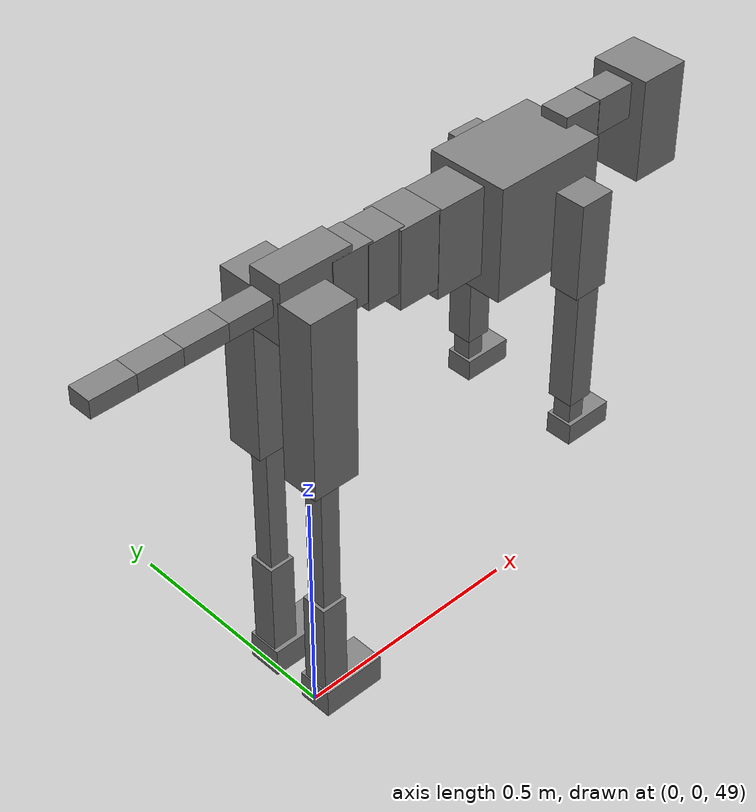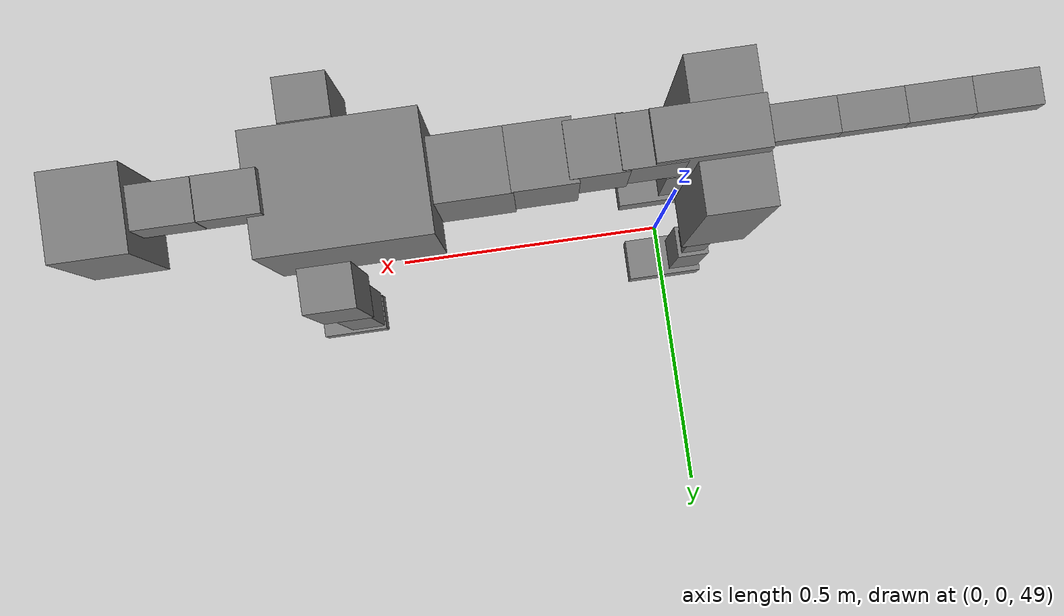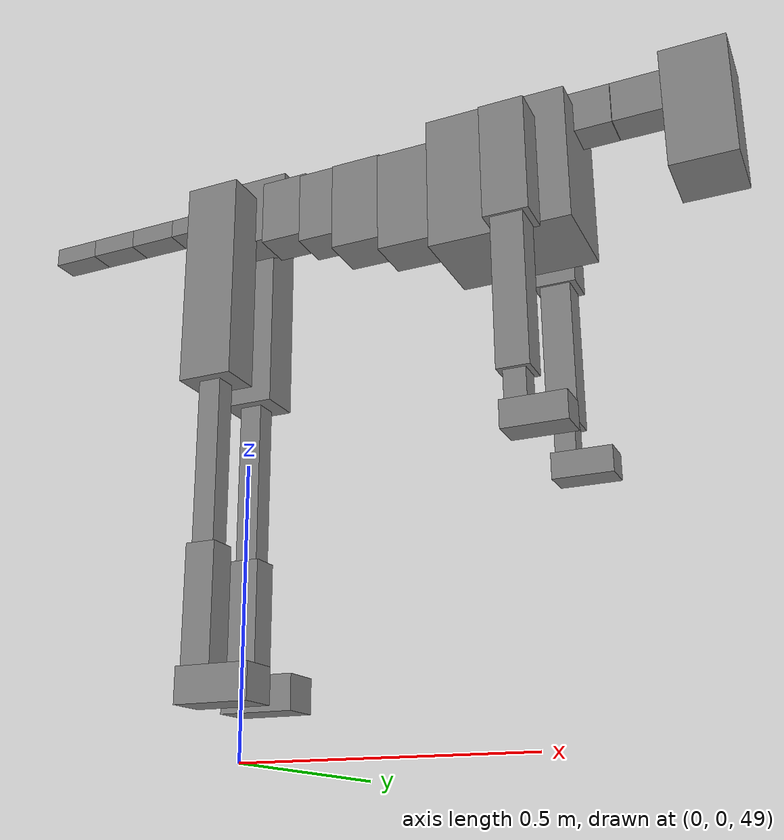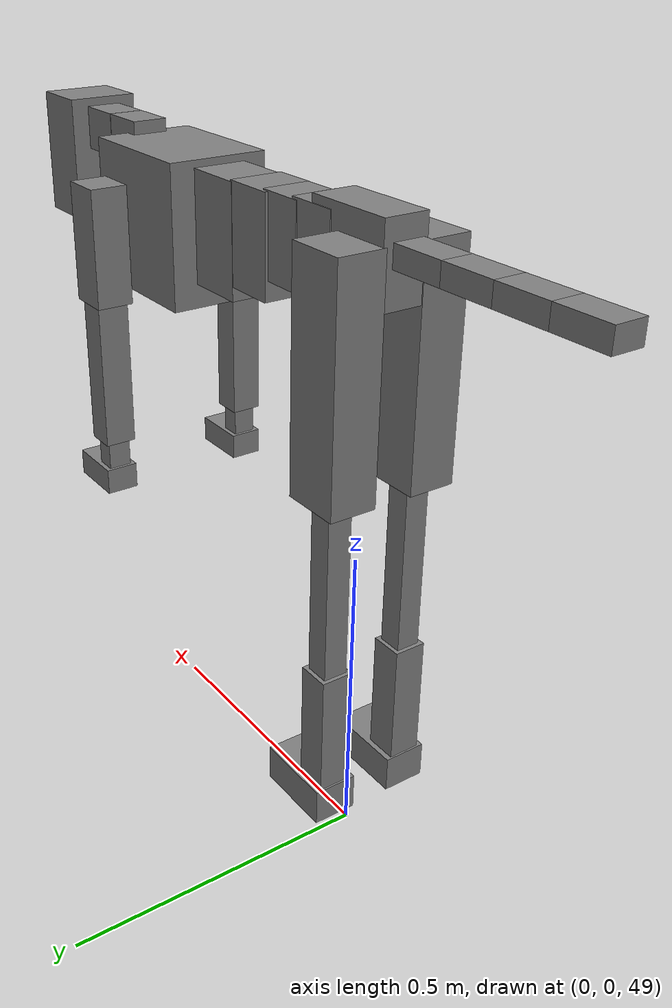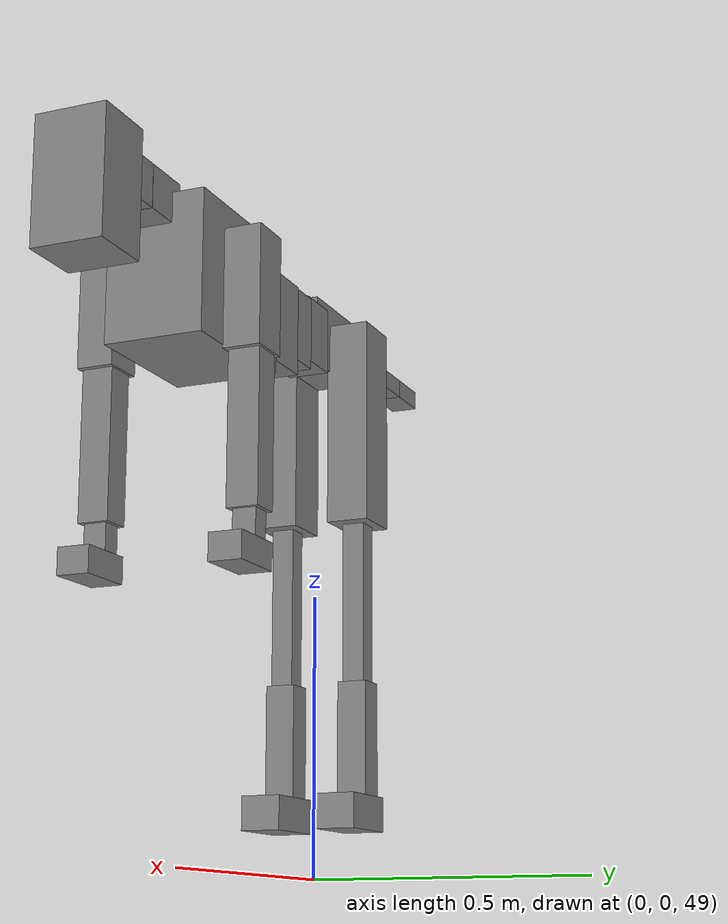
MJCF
<mujoco model="dog">

    <default>
        <joint armature="0.02" stiffness="1" damping="0.2" limited="true"/>
        <geom condim="3" friction="1 0.05 0.05" margin="0.01"/>
        <motor ctrllimited="true" ctrlrange="-1.0 1.0" forcelimited="true" gear="50"/>
    </default>

    <compiler inertiafromgeom="true" angle="radian"/>

    <option timestep="0.016" iterations="50" tolerance="1e-10" solver="Newton" jacobian="dense" cone="pyramidal"/>

    <size nconmax="20000" njmax="60000" nstack="5000000"/>
    <visual>
        <map force="0.1" zfar="30"/>
        <rgba haze="0.15 0.25 0.35 1"/>
        <quality shadowsize="2048"/>
        <global offwidth="800" offheight="800"/>
    </visual>

    <asset>
        <texture type="skybox" builtin="gradient" rgb1="0.3 0.5 0.7" rgb2="0 0 0" width="512" height="512"/>
        <texture name="texplane" type="2d" builtin="checker" rgb1=".2 .3 .4" rgb2=".1 0.15 0.2" width="512" height="512"
                 mark="cross" markrgb=".8 .8 .8"/>
        <texture name="texgeom" type="cube" builtin="flat" mark="cross" width="127" height="1278" rgb1="0.8 0.6 0.4"
                 rgb2="0.8 0.6 0.4" markrgb="1 1 1" random="0.01"/>

        <material name="matplane" reflectance="0.3" texture="texplane" texrepeat="1 1" texuniform="true"/>
        <material name="matgeom" texture="texgeom" texuniform="true" rgba="0.8 0.6 .4 1"/>
    </asset>

    <worldbody>
        <geom name="floor" pos="0 0 0" size="0 0 .25" type="plane" material="matplane" condim="3"/>

        <light directional="false" diffuse=".2 .2 .2" specular="0 0 0" pos="0 0 5" dir="0 0 -1" castshadow="false"/>
        <light mode="targetbodycom" target="torso" directional="false" diffuse=".8 .8 .8" specular="0.3 0.3 0.3"
               pos="0 0 4.0" dir="0 0 -1"/>

        <body name="root" pos="0 0 50">
            <freejoint name="root_1"/>
            <geom type="box" pos="0 0 -0.02" size="0.0774  0.0358  0.063" density="2030"/>

            <body name="spine1" pos="0.054 0 0">
                <joint name="spine1_y" axis="0 1 0" range="0 0.7" limited="true"/>
                <geom type="box" pos="0.02375 0 -0.03" size="0.04375  0.0375  0.05985" density="2030"/>

                <body name="spine2" pos="0.0612 0 0">
                    <joint name="spine2_y" axis="0 1 0" range="-0.15 0.15" limited="true"/>
                    <geom type="box" pos="0.03555  0  -0.04" size="0.04055  0.039  0.06615" density="2030"/>

                    <body name="spine3" pos="0.0730 0 0">
                        <joint name="spine3_y" axis="0 1 0" range="-0.15 0.15" limited="true"/>
                        <geom type="box" pos="0.03555  0  -0.057" size="0.04555  0.0445  0.081" density="2030"/>

                        <body name="spine4" pos="0.0780 0 0">
                            <joint name="spine4_y" axis="0 1 0" range="-0.15 0.15" limited="true"/>
                            <geom type="box" pos="0.05265  0  -0.07" size="0.05265  0.045  0.09135" density="2030"/>

                            <body name="torso" pos="0.1082 0 0">
                                <joint name="torso_y" axis="0 1 0" range="-0.15 0.15" limited="true"/>
                                <geom type="box" pos="0.11925  0  -0.085" size="0.11925  0.085  0.11745"
                                      density="2030"/>

                                <body name="neck1" pos="0.2160  0   0.0180">
                                    <joint name="neck1_y" axis="0 1 0" range="-1.2  -1" limited="true"/>
                                    <geom type="box" pos="0.0423  0  0" size="0.0423  0.03  0.036" density="2325"/>

                                    <body name="neck2" pos="0.0853  0  0">
                                        <joint name="neck2_y" axis="0 1 0" range="0.1  0" limited="true"/>
                                        <geom type="box" pos="0.0423  0  0" size="0.0423  0.03  0.036" density="2325"/>

                                        <body name="head" pos="0.0853  0  0">
                                            <joint name="head_y" axis="0 1 0" range="-0.3  -0.2" limited="true"/>
                                            <geom type="box" pos="0.0531  0  -0.055" size="0.0531  0.06  0.1044"
                                                  density="4030"/>

                                        </body>
                                    </body>
                                </body>

                                <body name="front_shoulder" pos="0.156  0   -0.0480">
                                    <joint name="front_shoulder_y" axis="0 1 0" range="-1 1.5" limited="true"/>
                                    <geom type="box" pos="0 0.13 -0.0718" size="0.0366  0.0313  0.0984" density="1158"/>
                                    <geom type="box" pos="0 -0.13 -0.0718" size="0.0366  0.0313  0.0984"
                                          density="1158"/>

                                    <body name="front_elbow" pos="0  0  -0.1436">
                                        <joint name="front_elbow_y" axis="0 1 0" range="-2 0" limited="true"/>
                                        <geom type="box" pos="0 0.13 -0.1390" size="0.0261  0.0267  0.1390"
                                              density="1081"/>
                                        <geom type="box" pos="0 -0.13 -0.1390" size="0.0261  0.0267  0.1390"
                                              density="1081"/>

                                        <body name="front_wrist" pos="0  0  -0.2781">
                                            <joint name="front_wrist_y" axis="0 1 0" range="-0.2 0" limited="true"/>
                                            <geom type="box" pos="0 0.13 -0.0318" size="0.0177  0.0196  0.0449"
                                                  density="1664"/>
                                            <geom type="box" pos="0 -0.13 -0.0318" size="0.0177  0.0196  0.0449"
                                                  density="1664"/>

                                            <body name="front_finger_end" pos="0  0  -0.0635">
                                                <joint name="front_finger_y" axis="0 1 0" range="-0.4 1"
                                                       limited="true"/>
                                                <geom type="box" pos="0.0279  0.13  -0.0074"
                                                      size="0.0512  0.0279  0.0224" density="1515"/>
                                                <geom type="box" pos="0.0279  -0.13  -0.0074"
                                                      size="0.0512  0.0279  0.0224" density="1515"/>

                                            </body>

                                        </body>
                                    </body>
                                </body>

                            </body>
                        </body>
                    </body>
                </body>
            </body>

            <body name="back_hip" pos="-0.03 0 -0.018">
                <joint name="back_hip_y" axis="0 1 0" range="-1.5 0.3" limited="true"/>
                <geom type="box" pos="0 0.07 -0.1629" size="0.0490  0.0384  0.1857" density="1154"/>
                <geom type="box" pos="0 -0.07 -0.1629" size="0.0490  0.0384  0.1857" density="1154"/>

                <body name="back_knee" pos="0  0  -0.3258">
                    <joint name="back_knee_y" axis="0 1 0" range="0 2.8" limited="true"/>
                    <geom type="box" pos="0 0.07 -0.1607" size="0.0202  0.0199  0.1763" density="1227"/>
                    <geom type="box" pos="0 -0.07 -0.1607" size="0.0202  0.0199  0.1763" density="1227"/>

                    <body name="back_ankle" pos="0  0  -0.3215">
                        <joint name="back_ankle_y" axis="0 1 0" range="-2.2 0" limited="true"/>
                        <geom type="box" pos="0 0.07 -0.1030" size="0.0268  0.0268  0.1142" density="1284"/>
                        <geom type="box" pos="0 -0.07 -0.1030" size="0.0268  0.0268  0.1142" density="1284"/>

                        <body name="back_toe_end" pos="0  0  -0.2059">
                            <joint name="back_toe_y" axis="0 1 0" range="-0.4 1" limited="true"/>
                            <geom type="box" pos="0.0360  0.07  -0.0151" size="0.0659  0.0360  0.0301" density="1515"/>
                            <geom type="box" pos="0.0360  -0.07  -0.0151" size="0.0659  0.0360  0.0301" density="1515"/>

                        </body>
                    </body>
                </body>
            </body>

            <body name="tail1" pos="-0.074 0 -0.006">
                <joint name="tail1_y" axis="0 1 0" range="-0.2 0.2" limited="true"/>
                <geom type="box" pos="-0.0536  0  0" size="0.045  0.025  0.0175" density="1587"/>

                <body name="tail2" pos="-0.09 0 0">
                    <joint name="tail2_y" axis="0 1 0" range="-0.2 0.2" limited="true"/>
                    <geom type="box" pos="-0.0536  0  0" size="0.045  0.025  0.0175" density="1587"/>

                    <body name="tail3" pos="-0.09 0 0">
                        <joint name="tail3_y" axis="0 1 0" range="-0.2 0.2" limited="true"/>
                        <geom type="box" pos="-0.0536  0  0" size="0.045  0.025  0.0175" density="1587"/>

                        <body name="tail4" pos="-0.09 0 0">
                            <joint name="tail4_y" axis="0 1 0" range="-0.2 0.2" limited="true"/>
                            <geom type="box" pos="-0.0536  0  0" size="0.045  0.025  0.0175" density="1587"/>

                        </body>
                    </body>
                </body>
            </body>
        </body>
    </worldbody>

    <actuator>
        <motor joint="spine1_y" forcerange="-150 150     "/>
        <motor joint="spine2_y" forcerange="-150 150     "/>
        <motor joint="spine3_y" forcerange="-150 150     "/>
        <motor joint="spine4_y" forcerange="-150 150     "/>
        <motor joint="torso_y" forcerange="-150 150     "/>
        <motor joint="neck1_y" forcerange="-100 100       "/>
        <motor joint="neck2_y" forcerange="-100 100       "/>
        <motor joint="head_y" forcerange="-150 150       "/>
        <motor joint="front_shoulder_y" forcerange="-189.97 118.86"/>
        <motor joint="front_elbow_y" forcerange="-158.91 134.98"/>
        <motor joint="front_wrist_y" forcerange="-69.17 87.82"/>
        <motor joint="front_finger_y" forcerange="-77.28 31.78"/>
        <motor joint="back_hip_y" forcerange="-333.05 378.95"/>
        <motor joint="back_knee_y" forcerange="-260.30 229.13"/>
        <motor joint="back_angle_y" forcerange="-137.97 190.17"/>
        <motor joint="back_toe_y" forcerange="-134.34 73.40"/>
        <motor joint="tail1_y" forcerange="-50 50     "/>
        <motor joint="tail2_y" forcerange="-50 50     "/>
        <motor joint="tail3_y" forcerange="-50 50     "/>
        <motor joint="tail4_y" forcerange="-50 50     "/>
    </actuator>
</mujoco>
